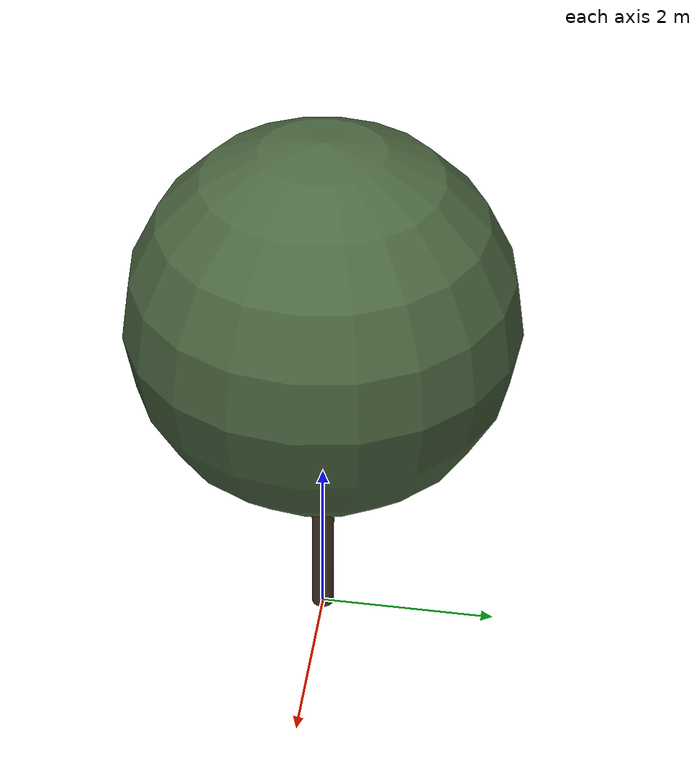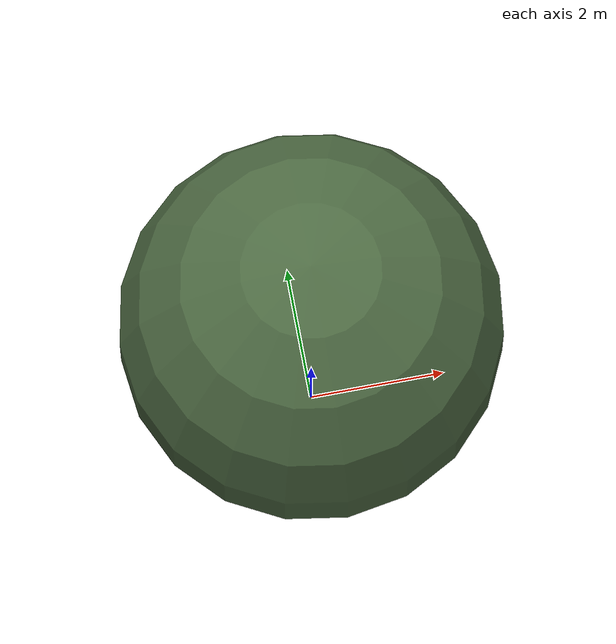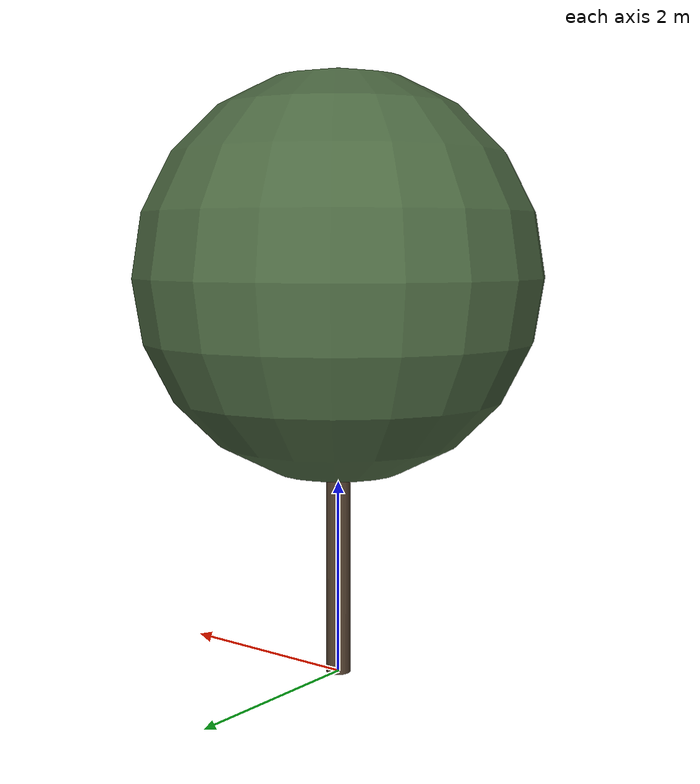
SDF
<?xml version="1.0" ?>
<sdf version="1.10">
  <model name="chene_vert_00">
    <static>true</static>

    <!-- Tronc -->
    <link name="trunk">
      <pose>0 0 1.7364745486724993 0 0 0</pose>
      <visual name="trunk_visual">
        <geometry>
          <cylinder>
            <radius>0.12723494806325075</radius>
            <length>3.4729490973449986</length>
          </cylinder>
        </geometry>
        <material>
          <ambient>0.29 0.22 0.16 1</ambient>
          <diffuse>0.29 0.22 0.16 1</diffuse>
          <specular>0.1 0.1 0.1 1</specular>
        </material>
      </visual>
      <collision name="trunk_collision">
        <geometry>
          <cylinder>
            <radius>0.12723494806325075</radius>
            <length>3.4729490973449986</length>
          </cylinder>
        </geometry>
      </collision>
    </link>

    <!-- Feuillage -->
    <link name="crown">
      <pose>0 0 4.096383596181734 0 0 0</pose>
      <visual name="crown_visual">
        <geometry>
          <sphere>
              <radius>2.0781149961224514</radius>
            </sphere>
        </geometry>
        <material>
          <ambient>0.29 0.40 0.25 1</ambient>
          <diffuse>0.29 0.40 0.25 1</diffuse>
          <specular>0.1 0.1 0.1 1</specular>
        </material>
      </visual>
      <collision name="crown_collision">
        <geometry>
          <sphere>
            <radius>1.6624919968979612</radius>
          </sphere>
        </geometry>
      </collision>
    </link>

    <!-- Joint tronc-feuillage -->
    <joint name="trunk_crown_joint" type="fixed">
      <parent>trunk</parent>
      <child>crown</child>
    </joint>

  </model>
</sdf>
